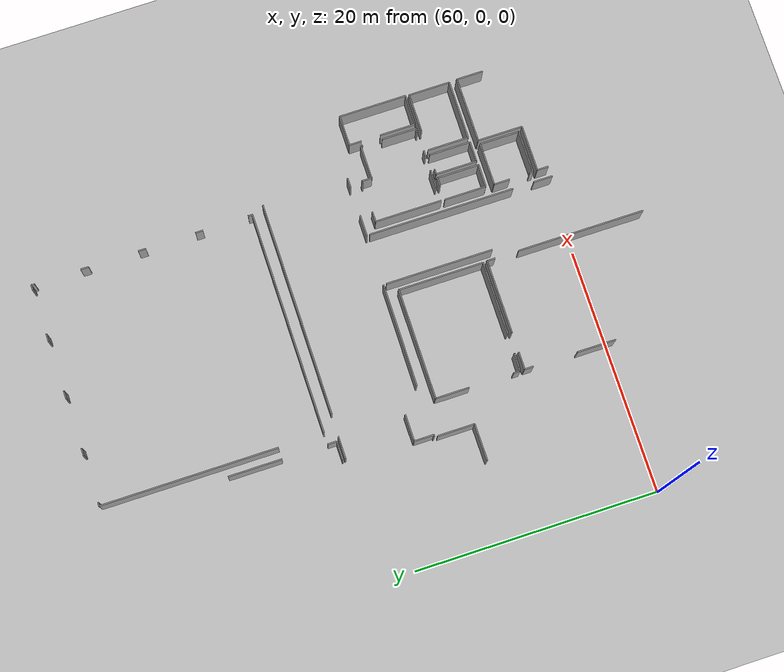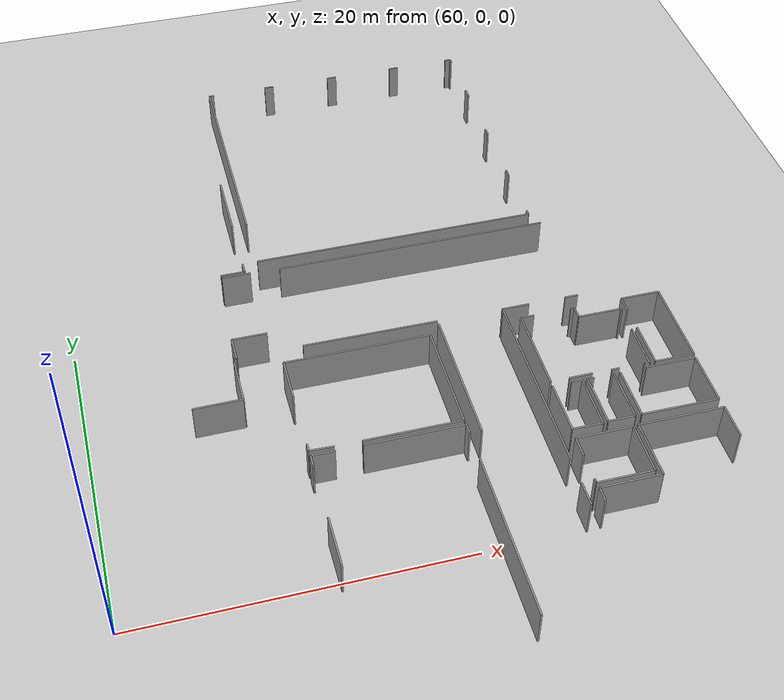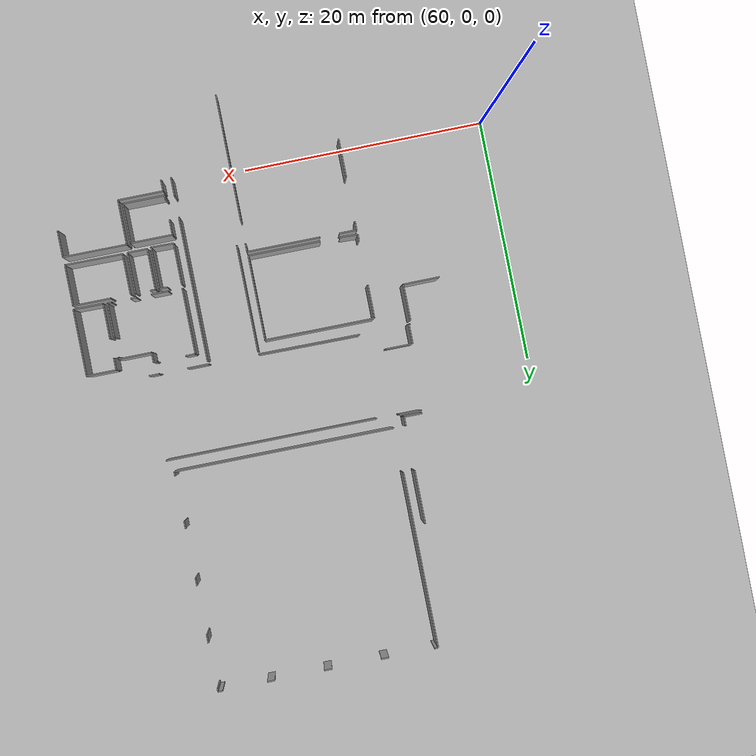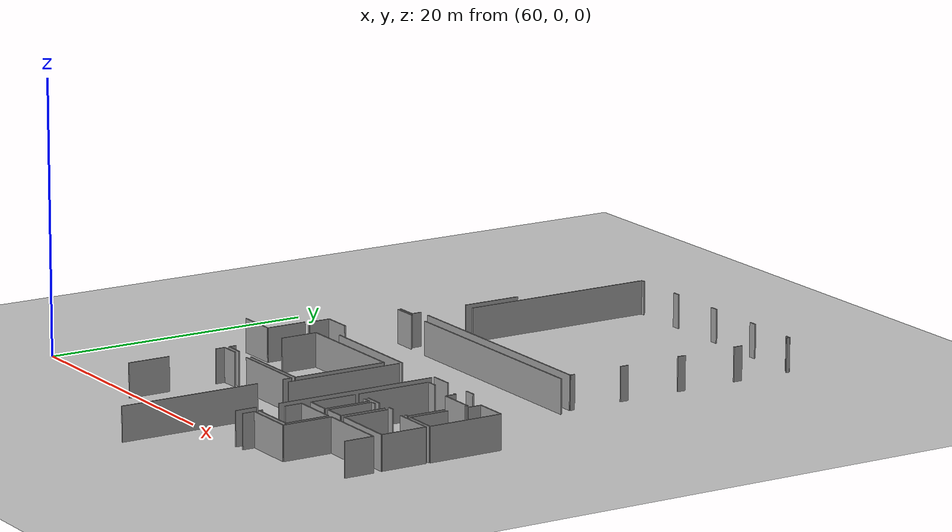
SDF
<sdf version="1.6">
 <world name="default">
  <model name="ground_plane">
   <static>1</static>
   <link name="link">
    <collision name="collision">
     <geometry><plane><normal>0 0 1</normal><size>100 100</size></plane></geometry>
     <surface><friction><ode><mu>100</mu><mu2>50</mu2></ode></friction></surface>
    </collision>
    <visual name="visual">
     <cast_shadows>0</cast_shadows>
     <geometry><plane><normal>0 0 1</normal><size>100 100</size></plane></geometry>
     <material>
      <script><uri>file://media/materials/scripts/gazebo.material</uri><name>Gazebo/Grey</name></script>
     </material>
    </visual>
   </link>
  </model>
  <model name="0510035740_A_40_1_103">
   <static>1</static>
   <link name="Wall_476">
    <collision name="Wall_476_Collision">
     <geometry><box><size>4.37758164502 0.1 2.5</size></box></geometry>
     <pose>2.18879082251 0 1.25 0 0 0</pose>
    </collision>
    <visual name="Wall_476_Visual">
     <pose>2.18879082251 0 1.25 0 0 0</pose>
     <geometry><box><size>4.37758164502 0.1 2.5</size></box></geometry>
     <material>
      <script><uri>file://media/materials/scripts/gazebo.material</uri><name>Gazebo/Grey</name></script>
      <ambient>1 1 1 1</ambient>
     </material>
    </visual>
    <pose>165.230611092 -18.1689434846 0 0 0 -1.57079632679</pose>
   </link>
   <link name="Wall_477">
    <collision name="Wall_477_Collision">
     <geometry><box><size>0.747955305419 0.1 2.5</size></box></geometry>
     <pose>0.37397765271 0 1.25 0 0 0</pose>
    </collision>
    <visual name="Wall_477_Visual">
     <pose>0.37397765271 0 1.25 0 0 0</pose>
     <geometry><box><size>0.747955305419 0.1 2.5</size></box></geometry>
     <material>
      <script><uri>file://media/materials/scripts/gazebo.material</uri><name>Gazebo/Grey</name></script>
      <ambient>1 1 1 1</ambient>
     </material>
    </visual>
    <pose>165.230611092 -26.2489927222 0 0 0 -1.57079632679</pose>
   </link>
   <link name="Wall_478">
    <collision name="Wall_478_Collision">
     <geometry><box><size>1.52788969753 0.1 2.5</size></box></geometry>
     <pose>0.763944848766 0 1.25 0 0 0</pose>
    </collision>
    <visual name="Wall_478_Visual">
     <pose>0.763944848766 0 1.25 0 0 0</pose>
     <geometry><box><size>1.52788969753 0.1 2.5</size></box></geometry>
     <material>
      <script><uri>file://media/materials/scripts/gazebo.material</uri><name>Gazebo/Grey</name></script>
      <ambient>1 1 1 1</ambient>
     </material>
    </visual>
    <pose>165.230611092 -26.9969480276 0 0 0 3.14159265359</pose>
   </link>
   <link name="Wall_480">
    <collision name="Wall_480_Collision">
     <geometry><box><size>14.4844958535 0.1 2.5</size></box></geometry>
     <pose>7.24224792675 0 1.25 0 0 0</pose>
    </collision>
    <visual name="Wall_480_Visual">
     <pose>7.24224792675 0 1.25 0 0 0</pose>
     <geometry><box><size>14.4844958535 0.1 2.5</size></box></geometry>
     <material>
      <script><uri>file://media/materials/scripts/gazebo.material</uri><name>Gazebo/Grey</name></script>
      <ambient>1 1 1 1</ambient>
     </material>
    </visual>
    <pose>166.169679511 -22.5574386274 0 0 0 1.57079632679</pose>
   </link>
   <link name="Wall_481">
    <collision name="Wall_481_Collision">
     <geometry><box><size>0.305577939506 0.1 2.5</size></box></geometry>
     <pose>0.152788969753 0 1.25 0 0 0</pose>
    </collision>
    <visual name="Wall_481_Visual">
     <pose>0.152788969753 0 1.25 0 0 0</pose>
     <geometry><box><size>0.305577939506 0.1 2.5</size></box></geometry>
     <material>
      <script><uri>file://media/materials/scripts/gazebo.material</uri><name>Gazebo/Grey</name></script>
      <ambient>1 1 1 1</ambient>
     </material>
    </visual>
    <pose>166.169679511 -8.07294277393 0 0 0 0.0</pose>
   </link>
   <link name="Wall_482">
    <collision name="Wall_482_Collision">
     <geometry><box><size>0.633998083793 0.1 2.5</size></box></geometry>
     <pose>0.316999041896 0 1.25 0 0 0</pose>
    </collision>
    <visual name="Wall_482_Visual">
     <pose>0.316999041896 0 1.25 0 0 0</pose>
     <geometry><box><size>0.633998083793 0.1 2.5</size></box></geometry>
     <material>
      <script><uri>file://media/materials/scripts/gazebo.material</uri><name>Gazebo/Grey</name></script>
      <ambient>1 1 1 1</ambient>
     </material>
    </visual>
    <pose>170.246759262 -8.07294277393 0 0 0 0.0</pose>
   </link>
   <link name="Wall_483">
    <collision name="Wall_483_Collision">
     <geometry><box><size>0.656078881747 0.1 2.5</size></box></geometry>
     <pose>0.328039440874 0 1.25 0 0 0</pose>
    </collision>
    <visual name="Wall_483_Visual">
     <pose>0.328039440874 0 1.25 0 0 0</pose>
     <geometry><box><size>0.656078881747 0.1 2.5</size></box></geometry>
     <material>
      <script><uri>file://media/materials/scripts/gazebo.material</uri><name>Gazebo/Grey</name></script>
      <ambient>1 1 1 1</ambient>
     </material>
    </visual>
    <pose>174.94260896 -8.07294277393 0 0 0 0.0</pose>
   </link>
   <link name="Wall_484">
    <collision name="Wall_484_Collision">
     <geometry><box><size>0.618516144997 0.1 2.5</size></box></geometry>
     <pose>0.309258072499 0 1.25 0 0 0</pose>
    </collision>
    <visual name="Wall_484_Visual">
     <pose>0.309258072499 0 1.25 0 0 0</pose>
     <geometry><box><size>0.618516144997 0.1 2.5</size></box></geometry>
     <material>
      <script><uri>file://media/materials/scripts/gazebo.material</uri><name>Gazebo/Grey</name></script>
      <ambient>1 1 1 1</ambient>
     </material>
    </visual>
    <pose>179.686934893 -8.07294277393 0 0 0 0.0</pose>
   </link>
   <link name="Wall_485">
    <collision name="Wall_485_Collision">
     <geometry><box><size>0.391109306295 0.1 2.5</size></box></geometry>
     <pose>0.195554653147 0 1.25 0 0 0</pose>
    </collision>
    <visual name="Wall_485_Visual">
     <pose>0.195554653147 0 1.25 0 0 0</pose>
     <geometry><box><size>0.391109306295 0.1 2.5</size></box></geometry>
     <material>
      <script><uri>file://media/materials/scripts/gazebo.material</uri><name>Gazebo/Grey</name></script>
      <ambient>1 1 1 1</ambient>
     </material>
    </visual>
    <pose>184.002588783 -8.07294277393 0 0 0 0.0</pose>
   </link>
   <link name="Wall_486">
    <collision name="Wall_486_Collision">
     <geometry><box><size>0.269030411858 0.1 2.5</size></box></geometry>
     <pose>0.134515205929 0 1.25 0 0 0</pose>
    </collision>
    <visual name="Wall_486_Visual">
     <pose>0.134515205929 0 1.25 0 0 0</pose>
     <geometry><box><size>0.269030411858 0.1 2.5</size></box></geometry>
     <material>
      <script><uri>file://media/materials/scripts/gazebo.material</uri><name>Gazebo/Grey</name></script>
      <ambient>1 1 1 1</ambient>
     </material>
    </visual>
    <pose>184.39369809 -8.07294277393 0 0 0 -1.57079632679</pose>
   </link>
   <link name="Wall_487">
    <collision name="Wall_487_Collision">
     <geometry><box><size>0.668768995514 0.1 2.5</size></box></geometry>
     <pose>0.334384497757 0 1.25 0 0 0</pose>
    </collision>
    <visual name="Wall_487_Visual">
     <pose>0.334384497757 0 1.25 0 0 0</pose>
     <geometry><box><size>0.668768995514 0.1 2.5</size></box></geometry>
     <material>
      <script><uri>file://media/materials/scripts/gazebo.material</uri><name>Gazebo/Grey</name></script>
      <ambient>1 1 1 1</ambient>
     </material>
    </visual>
    <pose>184.39369809 -12.1023076972 0 0 0 -1.57079632679</pose>
   </link>
   <link name="Wall_488">
    <collision name="Wall_488_Collision">
     <geometry><box><size>0.623845992779 0.1 2.5</size></box></geometry>
     <pose>0.31192299639 0 1.25 0 0 0</pose>
    </collision>
    <visual name="Wall_488_Visual">
     <pose>0.31192299639 0 1.25 0 0 0</pose>
     <geometry><box><size>0.623845992779 0.1 2.5</size></box></geometry>
     <material>
      <script><uri>file://media/materials/scripts/gazebo.material</uri><name>Gazebo/Grey</name></script>
      <ambient>1 1 1 1</ambient>
     </material>
    </visual>
    <pose>184.39369809 -16.8362277368 0 0 0 -1.57079632679</pose>
   </link>
   <link name="Wall_489">
    <collision name="Wall_489_Collision">
     <geometry><box><size>0.618008540447 0.1 2.5</size></box></geometry>
     <pose>0.309004270223 0 1.25 0 0 0</pose>
    </collision>
    <visual name="Wall_489_Visual">
     <pose>0.309004270223 0 1.25 0 0 0</pose>
     <geometry><box><size>0.618008540447 0.1 2.5</size></box></geometry>
     <material>
      <script><uri>file://media/materials/scripts/gazebo.material</uri><name>Gazebo/Grey</name></script>
      <ambient>1 1 1 1</ambient>
     </material>
    </visual>
    <pose>184.39369809 -21.5531430239 0 0 0 -1.57079632679</pose>
   </link>
   <link name="Wall_490">
    <collision name="Wall_490_Collision">
     <geometry><box><size>0.350500942241 0.1 2.5</size></box></geometry>
     <pose>0.17525047112 0 1.25 0 0 0</pose>
    </collision>
    <visual name="Wall_490_Visual">
     <pose>0.17525047112 0 1.25 0 0 0</pose>
     <geometry><box><size>0.350500942241 0.1 2.5</size></box></geometry>
     <material>
      <script><uri>file://media/materials/scripts/gazebo.material</uri><name>Gazebo/Grey</name></script>
      <ambient>1 1 1 1</ambient>
     </material>
    </visual>
    <pose>184.39369809 -25.9121971028 0 0 0 -1.57079632679</pose>
   </link>
   <link name="Wall_491">
    <collision name="Wall_491_Collision">
     <geometry><box><size>18.2021915826 0.1 2.5</size></box></geometry>
     <pose>9.10109579132 0 1.25 0 0 0</pose>
    </collision>
    <visual name="Wall_491_Visual">
     <pose>9.10109579132 0 1.25 0 0 0</pose>
     <geometry><box><size>18.2021915826 0.1 2.5</size></box></geometry>
     <material>
      <script><uri>file://media/materials/scripts/gazebo.material</uri><name>Gazebo/Grey</name></script>
      <ambient>1 1 1 1</ambient>
     </material>
    </visual>
    <pose>184.39369809 -26.2626980451 0 0 0 3.14159265359</pose>
   </link>
   <link name="Wall_497">
    <collision name="Wall_497_Collision">
     <geometry><box><size>1.81417866411 0.1 2.5</size></box></geometry>
     <pose>0.907089332056 0 1.25 0 0 0</pose>
    </collision>
    <visual name="Wall_497_Visual">
     <pose>0.907089332056 0 1.25 0 0 0</pose>
     <geometry><box><size>1.81417866411 0.1 2.5</size></box></geometry>
     <material>
      <script><uri>file://media/materials/scripts/gazebo.material</uri><name>Gazebo/Grey</name></script>
      <ambient>1 1 1 1</ambient>
     </material>
    </visual>
    <pose>163.733177668 -27.2192788208 0 0 0 0.0</pose>
   </link>
   <link name="Wall_498">
    <collision name="Wall_498_Collision">
     <geometry><box><size>2.16950184958 0.1 2.5</size></box></geometry>
     <pose>1.08475092479 0 1.25 0 0 0</pose>
    </collision>
    <visual name="Wall_498_Visual">
     <pose>1.08475092479 0 1.25 0 0 0</pose>
     <geometry><box><size>2.16950184958 0.1 2.5</size></box></geometry>
     <material>
      <script><uri>file://media/materials/scripts/gazebo.material</uri><name>Gazebo/Grey</name></script>
      <ambient>1 1 1 1</ambient>
     </material>
    </visual>
    <pose>165.547356332 -32.6841494134 0 0 0 3.14159265359</pose>
   </link>
   <link name="Wall_499">
    <collision name="Wall_499_Collision">
     <geometry><box><size>1.60149235738 0.1 2.5</size></box></geometry>
     <pose>0.800746178689 0 1.25 0 0 0</pose>
    </collision>
    <visual name="Wall_499_Visual">
     <pose>0.800746178689 0 1.25 0 0 0</pose>
     <geometry><box><size>1.60149235738 0.1 2.5</size></box></geometry>
     <material>
      <script><uri>file://media/materials/scripts/gazebo.material</uri><name>Gazebo/Grey</name></script>
      <ambient>1 1 1 1</ambient>
     </material>
    </visual>
    <pose>163.377854482 -32.6841494134 0 0 0 -1.57079632679</pose>
   </link>
   <link name="Wall_500">
    <collision name="Wall_500_Collision">
     <geometry><box><size>0.145174901493 0.1 2.5</size></box></geometry>
     <pose>0.0725874507465 0 1.25 0 0 0</pose>
    </collision>
    <visual name="Wall_500_Visual">
     <pose>0.0725874507465 0 1.25 0 0 0</pose>
     <geometry><box><size>0.145174901493 0.1 2.5</size></box></geometry>
     <material>
      <script><uri>file://media/materials/scripts/gazebo.material</uri><name>Gazebo/Grey</name></script>
      <ambient>1 1 1 1</ambient>
     </material>
    </visual>
    <pose>163.377854482 -34.2856417708 0 0 0 3.14159265359</pose>
   </link>
   <link name="Wall_504">
    <collision name="Wall_504_Collision">
     <geometry><box><size>3.01187160143 0.1 2.5</size></box></geometry>
     <pose>1.50593580071 0 1.25 0 0 0</pose>
    </collision>
    <visual name="Wall_504_Visual">
     <pose>1.50593580071 0 1.25 0 0 0</pose>
     <geometry><box><size>3.01187160143 0.1 2.5</size></box></geometry>
     <material>
      <script><uri>file://media/materials/scripts/gazebo.material</uri><name>Gazebo/Grey</name></script>
      <ambient>1 1 1 1</ambient>
     </material>
    </visual>
    <pose>163.188517985 -34.5462967075 0 0 0 -1.57079632679</pose>
   </link>
   <link name="Wall_505">
    <collision name="Wall_505_Collision">
     <geometry><box><size>3.00810980467 0.1 2.5</size></box></geometry>
     <pose>1.50405490233 0 1.25 0 0 0</pose>
    </collision>
    <visual name="Wall_505_Visual">
     <pose>1.50405490233 0 1.25 0 0 0</pose>
     <geometry><box><size>3.00810980467 0.1 2.5</size></box></geometry>
     <material>
      <script><uri>file://media/materials/scripts/gazebo.material</uri><name>Gazebo/Grey</name></script>
      <ambient>1 1 1 1</ambient>
     </material>
    </visual>
    <pose>163.188517985 -37.558168309 0 0 0 -3.13610840213</pose>
   </link>
   <link name="Wall_506">
    <collision name="Wall_506_Collision">
     <geometry><box><size>17.4529672659 0.1 2.5</size></box></geometry>
     <pose>8.72648363293 0 1.25 0 0 0</pose>
    </collision>
    <visual name="Wall_506_Visual">
     <pose>8.72648363293 0 1.25 0 0 0</pose>
     <geometry><box><size>17.4529672659 0.1 2.5</size></box></geometry>
     <material>
      <script><uri>file://media/materials/scripts/gazebo.material</uri><name>Gazebo/Grey</name></script>
      <ambient>1 1 1 1</ambient>
     </material>
    </visual>
    <pose>167.426508379 -27.2806989715 0 0 0 0.0</pose>
   </link>
   <link name="Wall_507">
    <collision name="Wall_507_Collision">
     <geometry><box><size>0.825111197122 0.1 2.5</size></box></geometry>
     <pose>0.412555598561 0 1.25 0 0 0</pose>
    </collision>
    <visual name="Wall_507_Visual">
     <pose>0.412555598561 0 1.25 0 0 0</pose>
     <geometry><box><size>0.825111197122 0.1 2.5</size></box></geometry>
     <material>
      <script><uri>file://media/materials/scripts/gazebo.material</uri><name>Gazebo/Grey</name></script>
      <ambient>1 1 1 1</ambient>
     </material>
    </visual>
    <pose>184.879475644 -34.3094991847 0 0 0 3.14159265359</pose>
   </link>
   <link name="Wall_508">
    <collision name="Wall_508_Collision">
     <geometry><box><size>1.74133741109 0.1 2.5</size></box></geometry>
     <pose>0.870668705545 0 1.25 0 0 0</pose>
    </collision>
    <visual name="Wall_508_Visual">
     <pose>0.870668705545 0 1.25 0 0 0</pose>
     <geometry><box><size>1.74133741109 0.1 2.5</size></box></geometry>
     <material>
      <script><uri>file://media/materials/scripts/gazebo.material</uri><name>Gazebo/Grey</name></script>
      <ambient>1 1 1 1</ambient>
     </material>
    </visual>
    <pose>181.690196253 -34.3094991847 0 0 0 3.14159265359</pose>
   </link>
   <link name="Wall_509">
    <collision name="Wall_509_Collision">
     <geometry><box><size>8.38351238186 0.1 2.5</size></box></geometry>
     <pose>4.19175619093 0 1.25 0 0 0</pose>
    </collision>
    <visual name="Wall_509_Visual">
     <pose>4.19175619093 0 1.25 0 0 0</pose>
     <geometry><box><size>8.38351238186 0.1 2.5</size></box></geometry>
     <material>
      <script><uri>file://media/materials/scripts/gazebo.material</uri><name>Gazebo/Grey</name></script>
      <ambient>1 1 1 1</ambient>
     </material>
    </visual>
    <pose>175.809851335 -34.3094991847 0 0 0 3.13523507523</pose>
   </link>
   <link name="Wall_517">
    <collision name="Wall_517_Collision">
     <geometry><box><size>8.76430017195 0.1 2.5</size></box></geometry>
     <pose>4.38215008598 0 1.25 0 0 0</pose>
    </collision>
    <visual name="Wall_517_Visual">
     <pose>4.38215008598 0 1.25 0 0 0</pose>
     <geometry><box><size>8.76430017195 0.1 2.5</size></box></geometry>
     <material>
      <script><uri>file://media/materials/scripts/gazebo.material</uri><name>Gazebo/Grey</name></script>
      <ambient>1 1 1 1</ambient>
     </material>
    </visual>
    <pose>175.821272438 -43.3204951682 0 0 0 1.57079632679</pose>
   </link>
   <link name="Wall_518">
    <collision name="Wall_518_Collision">
     <geometry><box><size>11.920585268 0.1 2.5</size></box></geometry>
     <pose>5.96029263402 0 1.25 0 0 0</pose>
    </collision>
    <visual name="Wall_518_Visual">
     <pose>5.96029263402 0 1.25 0 0 0</pose>
     <geometry><box><size>11.920585268 0.1 2.5</size></box></geometry>
     <material>
      <script><uri>file://media/materials/scripts/gazebo.material</uri><name>Gazebo/Grey</name></script>
      <ambient>1 1 1 1</ambient>
     </material>
    </visual>
    <pose>179.985660171 -34.5561949963 0 0 0 -1.57079632679</pose>
   </link>
   <link name="Wall_519">
    <collision name="Wall_519_Collision">
     <geometry><box><size>1.55200091369 0.1 2.5</size></box></geometry>
     <pose>0.776000456844 0 1.25 0 0 0</pose>
    </collision>
    <visual name="Wall_519_Visual">
     <pose>0.776000456844 0 1.25 0 0 0</pose>
     <geometry><box><size>1.55200091369 0.1 2.5</size></box></geometry>
     <material>
      <script><uri>file://media/materials/scripts/gazebo.material</uri><name>Gazebo/Grey</name></script>
      <ambient>1 1 1 1</ambient>
     </material>
    </visual>
    <pose>179.985660171 -48.2239551278 0 0 0 -1.57079632679</pose>
   </link>
   <link name="Wall_526">
    <collision name="Wall_526_Collision">
     <geometry><box><size>0.516741432587 0.1 2.5</size></box></geometry>
     <pose>0.258370716293 0 1.25 0 0 0</pose>
    </collision>
    <visual name="Wall_526_Visual">
     <pose>0.258370716293 0 1.25 0 0 0</pose>
     <geometry><box><size>0.516741432587 0.1 2.5</size></box></geometry>
     <material>
      <script><uri>file://media/materials/scripts/gazebo.material</uri><name>Gazebo/Grey</name></script>
      <ambient>1 1 1 1</ambient>
     </material>
    </visual>
    <pose>166.018159553 -42.2598554596 0 0 0 1.57079632679</pose>
   </link>
   <link name="Wall_527">
    <collision name="Wall_527_Collision">
     <geometry><box><size>2.76339917387 0.1 2.5</size></box></geometry>
     <pose>1.38169958694 0 1.25 0 0 0</pose>
    </collision>
    <visual name="Wall_527_Visual">
     <pose>1.38169958694 0 1.25 0 0 0</pose>
     <geometry><box><size>2.76339917387 0.1 2.5</size></box></geometry>
     <material>
      <script><uri>file://media/materials/scripts/gazebo.material</uri><name>Gazebo/Grey</name></script>
      <ambient>1 1 1 1</ambient>
     </material>
    </visual>
    <pose>166.018159553 -38.0837928212 0 0 0 1.57079632679</pose>
   </link>
   <link name="Wall_528">
    <collision name="Wall_528_Collision">
     <geometry><box><size>9.05058913853 0.1 2.5</size></box></geometry>
     <pose>4.52529456927 0 1.25 0 0 0</pose>
    </collision>
    <visual name="Wall_528_Visual">
     <pose>4.52529456927 0 1.25 0 0 0</pose>
     <geometry><box><size>9.05058913853 0.1 2.5</size></box></geometry>
     <material>
      <script><uri>file://media/materials/scripts/gazebo.material</uri><name>Gazebo/Grey</name></script>
      <ambient>1 1 1 1</ambient>
     </material>
    </visual>
    <pose>166.018159553 -35.3203936473 0 0 0 0.0</pose>
   </link>
   <link name="Wall_529">
    <collision name="Wall_529_Collision">
     <geometry><box><size>6.99605971968 0.1 2.5</size></box></geometry>
     <pose>3.49802985984 0 1.25 0 0 0</pose>
    </collision>
    <visual name="Wall_529_Visual">
     <pose>3.49802985984 0 1.25 0 0 0</pose>
     <geometry><box><size>6.99605971968 0.1 2.5</size></box></geometry>
     <material>
      <script><uri>file://media/materials/scripts/gazebo.material</uri><name>Gazebo/Grey</name></script>
      <ambient>1 1 1 1</ambient>
     </material>
    </visual>
    <pose>175.068748691 -35.3203936473 0 0 0 -1.57079632679</pose>
   </link>
   <link name="Wall_530">
    <collision name="Wall_530_Collision">
     <geometry><box><size>5.96739909773 0.1 2.5</size></box></geometry>
     <pose>2.98369954887 0 1.25 0 0 0</pose>
    </collision>
    <visual name="Wall_530_Visual">
     <pose>2.98369954887 0 1.25 0 0 0</pose>
     <geometry><box><size>5.96739909773 0.1 2.5</size></box></geometry>
     <material>
      <script><uri>file://media/materials/scripts/gazebo.material</uri><name>Gazebo/Grey</name></script>
      <ambient>1 1 1 1</ambient>
     </material>
    </visual>
    <pose>175.068748691 -42.316453367 0 0 0 3.14159265359</pose>
   </link>
   <link name="Wall_531">
    <collision name="Wall_531_Collision">
     <geometry><box><size>1.45538795896 0.1 2.5</size></box></geometry>
     <pose>0.727693979482 0 1.25 0 0 0</pose>
    </collision>
    <visual name="Wall_531_Visual">
     <pose>0.727693979482 0 1.25 0 0 0</pose>
     <geometry><box><size>1.45538795896 0.1 2.5</size></box></geometry>
     <material>
      <script><uri>file://media/materials/scripts/gazebo.material</uri><name>Gazebo/Grey</name></script>
      <ambient>1 1 1 1</ambient>
     </material>
    </visual>
    <pose>167.47244659 -42.316453367 0 0 0 3.10269430869</pose>
   </link>
   <link name="Wall_533">
    <collision name="Wall_533_Collision">
     <geometry><box><size>3.14207216868 0.1 2.5</size></box></geometry>
     <pose>1.57103608434 0 1.25 0 0 0</pose>
    </collision>
    <visual name="Wall_533_Visual">
     <pose>1.57103608434 0 1.25 0 0 0</pose>
     <geometry><box><size>3.14207216868 0.1 2.5</size></box></geometry>
     <material>
      <script><uri>file://media/materials/scripts/gazebo.material</uri><name>Gazebo/Grey</name></script>
      <ambient>1 1 1 1</ambient>
     </material>
    </visual>
    <pose>166.032880085 -50.1597050818 0 0 0 1.57079632679</pose>
   </link>
   <link name="Wall_534">
    <collision name="Wall_534_Collision">
     <geometry><box><size>0.719275648306 0.1 2.5</size></box></geometry>
     <pose>0.359637824153 0 1.25 0 0 0</pose>
    </collision>
    <visual name="Wall_534_Visual">
     <pose>0.359637824153 0 1.25 0 0 0</pose>
     <geometry><box><size>0.719275648306 0.1 2.5</size></box></geometry>
     <material>
      <script><uri>file://media/materials/scripts/gazebo.material</uri><name>Gazebo/Grey</name></script>
      <ambient>1 1 1 1</ambient>
     </material>
    </visual>
    <pose>166.032880085 -43.3583117073 0 0 0 1.57079632679</pose>
   </link>
   <link name="Wall_535">
    <collision name="Wall_535_Collision">
     <geometry><box><size>1.42687639195 0.1 2.5</size></box></geometry>
     <pose>0.713438195973 0 1.25 0 0 0</pose>
    </collision>
    <visual name="Wall_535_Visual">
     <pose>0.713438195973 0 1.25 0 0 0</pose>
     <geometry><box><size>1.42687639195 0.1 2.5</size></box></geometry>
     <material>
      <script><uri>file://media/materials/scripts/gazebo.material</uri><name>Gazebo/Grey</name></script>
      <ambient>1 1 1 1</ambient>
     </material>
    </visual>
    <pose>166.032880085 -42.639036059 0 0 0 0.0</pose>
   </link>
   <link name="Wall_536">
    <collision name="Wall_536_Collision">
     <geometry><box><size>6.0366871189 0.1 2.5</size></box></geometry>
     <pose>3.01834355945 0 1.25 0 0 0</pose>
    </collision>
    <visual name="Wall_536_Visual">
     <pose>3.01834355945 0 1.25 0 0 0</pose>
     <geometry><box><size>6.0366871189 0.1 2.5</size></box></geometry>
     <material>
      <script><uri>file://media/materials/scripts/gazebo.material</uri><name>Gazebo/Grey</name></script>
      <ambient>1 1 1 1</ambient>
     </material>
    </visual>
    <pose>169.065563473 -42.639036059 0 0 0 0.0</pose>
   </link>
   <link name="Wall_537">
    <collision name="Wall_537_Collision">
     <geometry><box><size>0.680190097904 0.1 2.5</size></box></geometry>
     <pose>0.340095048952 0 1.25 0 0 0</pose>
    </collision>
    <visual name="Wall_537_Visual">
     <pose>0.340095048952 0 1.25 0 0 0</pose>
     <geometry><box><size>0.680190097904 0.1 2.5</size></box></geometry>
     <material>
      <script><uri>file://media/materials/scripts/gazebo.material</uri><name>Gazebo/Grey</name></script>
      <ambient>1 1 1 1</ambient>
     </material>
    </visual>
    <pose>175.102250592 -42.639036059 0 0 0 -1.57079632679</pose>
   </link>
   <link name="Wall_538">
    <collision name="Wall_538_Collision">
     <geometry><box><size>10.3726451908 0.1 2.5</size></box></geometry>
     <pose>5.18632259538 0 1.25 0 0 0</pose>
    </collision>
    <visual name="Wall_538_Visual">
     <pose>5.18632259538 0 1.25 0 0 0</pose>
     <geometry><box><size>10.3726451908 0.1 2.5</size></box></geometry>
     <material>
      <script><uri>file://media/materials/scripts/gazebo.material</uri><name>Gazebo/Grey</name></script>
      <ambient>1 1 1 1</ambient>
     </material>
    </visual>
    <pose>175.102250592 -45.2783259202 0 0 0 -1.57079632679</pose>
   </link>
   <link name="Wall_637">
    <collision name="Wall_637_Collision">
     <geometry><box><size>0.921809864025 0.1 2.5</size></box></geometry>
     <pose>0.460904932013 0 1.25 0 0 0</pose>
    </collision>
    <visual name="Wall_637_Visual">
     <pose>0.460904932013 0 1.25 0 0 0</pose>
     <geometry><box><size>0.921809864025 0.1 2.5</size></box></geometry>
     <material>
      <script><uri>file://media/materials/scripts/gazebo.material</uri><name>Gazebo/Grey</name></script>
      <ambient>1 1 1 1</ambient>
     </material>
    </visual>
    <pose>180.819654448 -49.7213885522 0 0 0 1.57079632679</pose>
   </link>
   <link name="Wall_638">
    <collision name="Wall_638_Collision">
     <geometry><box><size>3.74206074757 0.1 2.5</size></box></geometry>
     <pose>1.87103037379 0 1.25 0 0 0</pose>
    </collision>
    <visual name="Wall_638_Visual">
     <pose>1.87103037379 0 1.25 0 0 0</pose>
     <geometry><box><size>3.74206074757 0.1 2.5</size></box></geometry>
     <material>
      <script><uri>file://media/materials/scripts/gazebo.material</uri><name>Gazebo/Grey</name></script>
      <ambient>1 1 1 1</ambient>
     </material>
    </visual>
    <pose>180.819654448 -48.7995786882 0 0 0 0.0</pose>
   </link>
   <link name="Wall_639">
    <collision name="Wall_639_Collision">
     <geometry><box><size>3.66642766952 0.1 2.5</size></box></geometry>
     <pose>1.83321383476 0 1.25 0 0 0</pose>
    </collision>
    <visual name="Wall_639_Visual">
     <pose>1.83321383476 0 1.25 0 0 0</pose>
     <geometry><box><size>3.66642766952 0.1 2.5</size></box></geometry>
     <material>
      <script><uri>file://media/materials/scripts/gazebo.material</uri><name>Gazebo/Grey</name></script>
      <ambient>1 1 1 1</ambient>
     </material>
    </visual>
    <pose>184.561715196 -48.7995786882 0 0 0 1.57079632679</pose>
   </link>
   <link name="Wall_640">
    <collision name="Wall_640_Collision">
     <geometry><box><size>5.29837629994 0.1 2.5</size></box></geometry>
     <pose>2.64918814997 0 1.25 0 0 0</pose>
    </collision>
    <visual name="Wall_640_Visual">
     <pose>2.64918814997 0 1.25 0 0 0</pose>
     <geometry><box><size>5.29837629994 0.1 2.5</size></box></geometry>
     <material>
      <script><uri>file://media/materials/scripts/gazebo.material</uri><name>Gazebo/Grey</name></script>
      <ambient>1 1 1 1</ambient>
     </material>
    </visual>
    <pose>184.561715196 -45.1331510187 0 0 0 0.0</pose>
   </link>
   <link name="Wall_641">
    <collision name="Wall_641_Collision">
     <geometry><box><size>2.17660831329 0.1 2.5</size></box></geometry>
     <pose>1.08830415665 0 1.25 0 0 0</pose>
    </collision>
    <visual name="Wall_641_Visual">
     <pose>1.08830415665 0 1.25 0 0 0</pose>
     <geometry><box><size>2.17660831329 0.1 2.5</size></box></geometry>
     <material>
      <script><uri>file://media/materials/scripts/gazebo.material</uri><name>Gazebo/Grey</name></script>
      <ambient>1 1 1 1</ambient>
     </material>
    </visual>
    <pose>189.860091496 -45.1331510187 0 0 0 -1.57079632679</pose>
   </link>
   <link name="Wall_644">
    <collision name="Wall_644_Collision">
     <geometry><box><size>0.285273757479 0.1 2.5</size></box></geometry>
     <pose>0.14263687874 0 1.25 0 0 0</pose>
    </collision>
    <visual name="Wall_644_Visual">
     <pose>0.14263687874 0 1.25 0 0 0</pose>
     <geometry><box><size>0.285273757479 0.1 2.5</size></box></geometry>
     <material>
      <script><uri>file://media/materials/scripts/gazebo.material</uri><name>Gazebo/Grey</name></script>
      <ambient>1 1 1 1</ambient>
     </material>
    </visual>
    <pose>180.776000457 -48.4374028413 0 0 0 1.57079632679</pose>
   </link>
   <link name="Wall_645">
    <collision name="Wall_645_Collision">
     <geometry><box><size>1.28373190866 0.1 2.5</size></box></geometry>
     <pose>0.641865954328 0 1.25 0 0 0</pose>
    </collision>
    <visual name="Wall_645_Visual">
     <pose>0.641865954328 0 1.25 0 0 0</pose>
     <geometry><box><size>1.28373190866 0.1 2.5</size></box></geometry>
     <material>
      <script><uri>file://media/materials/scripts/gazebo.material</uri><name>Gazebo/Grey</name></script>
      <ambient>1 1 1 1</ambient>
     </material>
    </visual>
    <pose>180.776000457 -46.4623135346 0 0 0 1.57079632679</pose>
   </link>
   <link name="Wall_646">
    <collision name="Wall_646_Collision">
     <geometry><box><size>3.46744668566 0.1 2.5</size></box></geometry>
     <pose>1.73372334283 0 1.25 0 0 0</pose>
    </collision>
    <visual name="Wall_646_Visual">
     <pose>1.73372334283 0 1.25 0 0 0</pose>
     <geometry><box><size>3.46744668566 0.1 2.5</size></box></geometry>
     <material>
      <script><uri>file://media/materials/scripts/gazebo.material</uri><name>Gazebo/Grey</name></script>
      <ambient>1 1 1 1</ambient>
     </material>
    </visual>
    <pose>180.776000457 -45.178581626 0 0 0 0.0</pose>
   </link>
   <link name="Wall_647">
    <collision name="Wall_647_Collision">
     <geometry><box><size>3.25882121533 0.1 2.5</size></box></geometry>
     <pose>1.62941060767 0 1.25 0 0 0</pose>
    </collision>
    <visual name="Wall_647_Visual">
     <pose>1.62941060767 0 1.25 0 0 0</pose>
     <geometry><box><size>3.25882121533 0.1 2.5</size></box></geometry>
     <material>
      <script><uri>file://media/materials/scripts/gazebo.material</uri><name>Gazebo/Grey</name></script>
      <ambient>1 1 1 1</ambient>
     </material>
    </visual>
    <pose>184.243447143 -45.178581626 0 0 0 -1.57079632679</pose>
   </link>
   <link name="Wall_648">
    <collision name="Wall_648_Collision">
     <geometry><box><size>3.46744668566 0.1 2.5</size></box></geometry>
     <pose>1.73372334283 0 1.25 0 0 0</pose>
    </collision>
    <visual name="Wall_648_Visual">
     <pose>1.73372334283 0 1.25 0 0 0</pose>
     <geometry><box><size>3.46744668566 0.1 2.5</size></box></geometry>
     <material>
      <script><uri>file://media/materials/scripts/gazebo.material</uri><name>Gazebo/Grey</name></script>
      <ambient>1 1 1 1</ambient>
     </material>
    </visual>
    <pose>184.243447143 -48.4374028413 0 0 0 3.14159265359</pose>
   </link>
   <link name="Wall_649">
    <collision name="Wall_649_Collision">
     <geometry><box><size>5.46385538346 0.1 2.5</size></box></geometry>
     <pose>2.73192769173 0 1.25 0 0 0</pose>
    </collision>
    <visual name="Wall_649_Visual">
     <pose>2.73192769173 0 1.25 0 0 0</pose>
     <geometry><box><size>5.46385538346 0.1 2.5</size></box></geometry>
     <material>
      <script><uri>file://media/materials/scripts/gazebo.material</uri><name>Gazebo/Grey</name></script>
      <ambient>1 1 1 1</ambient>
     </material>
    </visual>
    <pose>180.835390189 -40.7842490308 0 0 0 1.57079632679</pose>
   </link>
   <link name="Wall_650">
    <collision name="Wall_650_Collision">
     <geometry><box><size>0.832725265382 0.1 2.5</size></box></geometry>
     <pose>0.416362632691 0 1.25 0 0 0</pose>
    </collision>
    <visual name="Wall_650_Visual">
     <pose>0.416362632691 0 1.25 0 0 0</pose>
     <geometry><box><size>0.832725265382 0.1 2.5</size></box></geometry>
     <material>
      <script><uri>file://media/materials/scripts/gazebo.material</uri><name>Gazebo/Grey</name></script>
      <ambient>1 1 1 1</ambient>
     </material>
    </visual>
    <pose>180.835390189 -35.3203936473 0 0 0 0.0</pose>
   </link>
   <link name="Wall_651">
    <collision name="Wall_651_Collision">
     <geometry><box><size>0.227153036427 0.1 2.5</size></box></geometry>
     <pose>0.113576518213 0 1.25 0 0 0</pose>
    </collision>
    <visual name="Wall_651_Visual">
     <pose>0.113576518213 0 1.25 0 0 0</pose>
     <geometry><box><size>0.227153036427 0.1 2.5</size></box></geometry>
     <material>
      <script><uri>file://media/materials/scripts/gazebo.material</uri><name>Gazebo/Grey</name></script>
      <ambient>1 1 1 1</ambient>
     </material>
    </visual>
    <pose>184.065531747 -35.3203936473 0 0 0 0.0</pose>
   </link>
   <link name="Wall_652">
    <collision name="Wall_652_Collision">
     <geometry><box><size>0.807598840124 0.1 2.5</size></box></geometry>
     <pose>0.403799420062 0 1.25 0 0 0</pose>
    </collision>
    <visual name="Wall_652_Visual">
     <pose>0.403799420062 0 1.25 0 0 0</pose>
     <geometry><box><size>0.807598840124 0.1 2.5</size></box></geometry>
     <material>
      <script><uri>file://media/materials/scripts/gazebo.material</uri><name>Gazebo/Grey</name></script>
      <ambient>1 1 1 1</ambient>
     </material>
    </visual>
    <pose>184.292684784 -35.3203936473 0 0 0 -1.57079632679</pose>
   </link>
   <link name="Wall_653">
    <collision name="Wall_653_Collision">
     <geometry><box><size>2.73954175999 0.1 2.5</size></box></geometry>
     <pose>1.36977088 0 1.25 0 0 0</pose>
    </collision>
    <visual name="Wall_653_Visual">
     <pose>1.36977088 0 1.25 0 0 0</pose>
     <geometry><box><size>2.73954175999 0.1 2.5</size></box></geometry>
     <material>
      <script><uri>file://media/materials/scripts/gazebo.material</uri><name>Gazebo/Grey</name></script>
      <ambient>1 1 1 1</ambient>
     </material>
    </visual>
    <pose>184.292684784 -36.1279924875 0 0 0 0.0</pose>
   </link>
   <link name="Wall_654">
    <collision name="Wall_654_Collision">
     <geometry><box><size>0.168524710824 0.1 2.5</size></box></geometry>
     <pose>0.084262355412 0 1.25 0 0 0</pose>
    </collision>
    <visual name="Wall_654_Visual">
     <pose>0.084262355412 0 1.25 0 0 0</pose>
     <geometry><box><size>0.168524710824 0.1 2.5</size></box></geometry>
     <material>
      <script><uri>file://media/materials/scripts/gazebo.material</uri><name>Gazebo/Grey</name></script>
      <ambient>1 1 1 1</ambient>
     </material>
    </visual>
    <pose>187.032226544 -36.1279924875 0 0 0 -1.57079632679</pose>
   </link>
   <link name="Wall_655">
    <collision name="Wall_655_Collision">
     <geometry><box><size>2.8433468906 0.1 2.5</size></box></geometry>
     <pose>1.4216734453 0 1.25 0 0 0</pose>
    </collision>
    <visual name="Wall_655_Visual">
     <pose>1.4216734453 0 1.25 0 0 0</pose>
     <geometry><box><size>2.8433468906 0.1 2.5</size></box></geometry>
     <material>
      <script><uri>file://media/materials/scripts/gazebo.material</uri><name>Gazebo/Grey</name></script>
      <ambient>1 1 1 1</ambient>
     </material>
    </visual>
    <pose>187.032226544 -37.91856754 0 0 0 -1.57079632679</pose>
   </link>
   <link name="Wall_656">
    <collision name="Wall_656_Collision">
     <geometry><box><size>0.324359307881 0.1 2.5</size></box></geometry>
     <pose>0.162179653941 0 1.25 0 0 0</pose>
    </collision>
    <visual name="Wall_656_Visual">
     <pose>0.162179653941 0 1.25 0 0 0</pose>
     <geometry><box><size>0.324359307881 0.1 2.5</size></box></geometry>
     <material>
      <script><uri>file://media/materials/scripts/gazebo.material</uri><name>Gazebo/Grey</name></script>
      <ambient>1 1 1 1</ambient>
     </material>
    </visual>
    <pose>187.032226544 -40.7619144306 0 0 0 3.14159265359</pose>
   </link>
   <link name="Wall_657">
    <collision name="Wall_657_Collision">
     <geometry><box><size>0.476133068533 0.1 2.5</size></box></geometry>
     <pose>0.238066534266 0 1.25 0 0 0</pose>
    </collision>
    <visual name="Wall_657_Visual">
     <pose>0.238066534266 0 1.25 0 0 0</pose>
     <geometry><box><size>0.476133068533 0.1 2.5</size></box></geometry>
     <material>
      <script><uri>file://media/materials/scripts/gazebo.material</uri><name>Gazebo/Grey</name></script>
      <ambient>1 1 1 1</ambient>
     </material>
    </visual>
    <pose>185.123379631 -40.7619144306 0 0 0 3.14159265359</pose>
   </link>
   <link name="Wall_658">
    <collision name="Wall_658_Collision">
     <geometry><box><size>1.42383076464 0.1 2.5</size></box></geometry>
     <pose>0.711915382321 0 1.25 0 0 0</pose>
    </collision>
    <visual name="Wall_658_Visual">
     <pose>0.711915382321 0 1.25 0 0 0</pose>
     <geometry><box><size>1.42383076464 0.1 2.5</size></box></geometry>
     <material>
      <script><uri>file://media/materials/scripts/gazebo.material</uri><name>Gazebo/Grey</name></script>
      <ambient>1 1 1 1</ambient>
     </material>
    </visual>
    <pose>183.420620166 -40.7619144306 0 0 0 3.14159265359</pose>
   </link>
   <link name="Wall_659">
    <collision name="Wall_659_Collision">
     <geometry><box><size>2.8968991707 0.1 2.5</size></box></geometry>
     <pose>1.44844958535 0 1.25 0 0 0</pose>
    </collision>
    <visual name="Wall_659_Visual">
     <pose>1.44844958535 0 1.25 0 0 0</pose>
     <geometry><box><size>2.8968991707 0.1 2.5</size></box></geometry>
     <material>
      <script><uri>file://media/materials/scripts/gazebo.material</uri><name>Gazebo/Grey</name></script>
      <ambient>1 1 1 1</ambient>
     </material>
    </visual>
    <pose>187.392625775 -40.7786653807 0 0 0 1.57079632679</pose>
   </link>
   <link name="Wall_660">
    <collision name="Wall_660_Collision">
     <geometry><box><size>1.00962545129 0.1 2.5</size></box></geometry>
     <pose>0.504812725646 0 1.25 0 0 0</pose>
    </collision>
    <visual name="Wall_660_Visual">
     <pose>0.504812725646 0 1.25 0 0 0</pose>
     <geometry><box><size>1.00962545129 0.1 2.5</size></box></geometry>
     <material>
      <script><uri>file://media/materials/scripts/gazebo.material</uri><name>Gazebo/Grey</name></script>
      <ambient>1 1 1 1</ambient>
     </material>
    </visual>
    <pose>187.392625775 -36.3046388711 0 0 0 1.57079632679</pose>
   </link>
   <link name="Wall_661">
    <collision name="Wall_661_Collision">
     <geometry><box><size>2.46492769808 0.1 2.5</size></box></geometry>
     <pose>1.23246384904 0 1.25 0 0 0</pose>
    </collision>
    <visual name="Wall_661_Visual">
     <pose>1.23246384904 0 1.25 0 0 0</pose>
     <geometry><box><size>2.46492769808 0.1 2.5</size></box></geometry>
     <material>
      <script><uri>file://media/materials/scripts/gazebo.material</uri><name>Gazebo/Grey</name></script>
      <ambient>1 1 1 1</ambient>
     </material>
    </visual>
    <pose>187.392625775 -35.2950134198 0 0 0 0.0</pose>
   </link>
   <link name="Wall_662">
    <collision name="Wall_662_Collision">
     <geometry><box><size>5.51436203626 0.1 2.5</size></box></geometry>
     <pose>2.75718101813 0 1.25 0 0 0</pose>
    </collision>
    <visual name="Wall_662_Visual">
     <pose>2.75718101813 0 1.25 0 0 0</pose>
     <geometry><box><size>5.51436203626 0.1 2.5</size></box></geometry>
     <material>
      <script><uri>file://media/materials/scripts/gazebo.material</uri><name>Gazebo/Grey</name></script>
      <ambient>1 1 1 1</ambient>
     </material>
    </visual>
    <pose>189.857553473 -35.2950134198 0 0 0 -1.57079632679</pose>
   </link>
   <link name="Wall_663">
    <collision name="Wall_663_Collision">
     <geometry><box><size>2.46511899621 0.1 2.5</size></box></geometry>
     <pose>1.2325594981 0 1.25 0 0 0</pose>
    </collision>
    <visual name="Wall_663_Visual">
     <pose>1.2325594981 0 1.25 0 0 0</pose>
     <geometry><box><size>2.46511899621 0.1 2.5</size></box></geometry>
     <material>
      <script><uri>file://media/materials/scripts/gazebo.material</uri><name>Gazebo/Grey</name></script>
      <ambient>1 1 1 1</ambient>
     </material>
    </visual>
    <pose>189.857553473 -40.8093754561 0 0 0 3.12913448432</pose>
   </link>
   <link name="Wall_664">
    <collision name="Wall_664_Collision">
     <geometry><box><size>3.34409877985 0.1 2.5</size></box></geometry>
     <pose>1.67204938992 0 1.25 0 0 0</pose>
    </collision>
    <visual name="Wall_664_Visual">
     <pose>1.67204938992 0 1.25 0 0 0</pose>
     <geometry><box><size>3.34409877985 0.1 2.5</size></box></geometry>
     <material>
      <script><uri>file://media/materials/scripts/gazebo.material</uri><name>Gazebo/Grey</name></script>
      <ambient>1 1 1 1</ambient>
     </material>
    </visual>
    <pose>185.049776971 -44.4435702366 0 0 0 1.57079632679</pose>
   </link>
   <link name="Wall_665">
    <collision name="Wall_665_Collision">
     <geometry><box><size>3.11973756845 0.1 2.5</size></box></geometry>
     <pose>1.55986878422 0 1.25 0 0 0</pose>
    </collision>
    <visual name="Wall_665_Visual">
     <pose>1.55986878422 0 1.25 0 0 0</pose>
     <geometry><box><size>3.11973756845 0.1 2.5</size></box></geometry>
     <material>
      <script><uri>file://media/materials/scripts/gazebo.material</uri><name>Gazebo/Grey</name></script>
      <ambient>1 1 1 1</ambient>
     </material>
    </visual>
    <pose>186.696699936 -41.0994714568 0 0 0 0.0</pose>
   </link>
   <link name="Wall_666">
    <collision name="Wall_666_Collision">
     <geometry><box><size>3.38064630749 0.1 2.5</size></box></geometry>
     <pose>1.69032315375 0 1.25 0 0 0</pose>
    </collision>
    <visual name="Wall_666_Visual">
     <pose>1.69032315375 0 1.25 0 0 0</pose>
     <geometry><box><size>3.38064630749 0.1 2.5</size></box></geometry>
     <material>
      <script><uri>file://media/materials/scripts/gazebo.material</uri><name>Gazebo/Grey</name></script>
      <ambient>1 1 1 1</ambient>
     </material>
    </visual>
    <pose>189.816437504 -41.0994714568 0 0 0 -1.57079632679</pose>
   </link>
   <link name="Wall_667">
    <collision name="Wall_667_Collision">
     <geometry><box><size>4.76680064191 0.1 2.5</size></box></geometry>
     <pose>2.38340032095 0 1.25 0 0 0</pose>
    </collision>
    <visual name="Wall_667_Visual">
     <pose>2.38340032095 0 1.25 0 0 0</pose>
     <geometry><box><size>4.76680064191 0.1 2.5</size></box></geometry>
     <material>
      <script><uri>file://media/materials/scripts/gazebo.material</uri><name>Gazebo/Grey</name></script>
      <ambient>1 1 1 1</ambient>
     </material>
    </visual>
    <pose>189.816437504 -44.4801177643 0 0 0 3.13392548047</pose>
   </link>
   <link name="Wall_668">
    <collision name="Wall_668_Collision">
     <geometry><box><size>3.368209996 0.1 2.5</size></box></geometry>
     <pose>1.684104998 0 1.25 0 0 0</pose>
    </collision>
    <visual name="Wall_668_Visual">
     <pose>1.684104998 0 1.25 0 0 0</pose>
     <geometry><box><size>3.368209996 0.1 2.5</size></box></geometry>
     <material>
      <script><uri>file://media/materials/scripts/gazebo.material</uri><name>Gazebo/Grey</name></script>
      <ambient>1 1 1 1</ambient>
     </material>
    </visual>
    <pose>182.996262761 -44.4544837344 0 0 0 1.57079632679</pose>
   </link>
   <link name="Wall_669">
    <collision name="Wall_669_Collision">
     <geometry><box><size>0.419788963408 0.1 2.5</size></box></geometry>
     <pose>0.209894481704 0 1.25 0 0 0</pose>
    </collision>
    <visual name="Wall_669_Visual">
     <pose>0.209894481704 0 1.25 0 0 0</pose>
     <geometry><box><size>0.419788963408 0.1 2.5</size></box></geometry>
     <material>
      <script><uri>file://media/materials/scripts/gazebo.material</uri><name>Gazebo/Grey</name></script>
      <ambient>1 1 1 1</ambient>
     </material>
    </visual>
    <pose>182.996262761 -41.0862737384 0 0 0 0.0</pose>
   </link>
   <link name="Wall_670">
    <collision name="Wall_670_Collision">
     <geometry><box><size>3.38242292342 0.1 2.5</size></box></geometry>
     <pose>1.69121146171 0 1.25 0 0 0</pose>
    </collision>
    <visual name="Wall_670_Visual">
     <pose>1.69121146171 0 1.25 0 0 0</pose>
     <geometry><box><size>3.38242292342 0.1 2.5</size></box></geometry>
     <material>
      <script><uri>file://media/materials/scripts/gazebo.material</uri><name>Gazebo/Grey</name></script>
      <ambient>1 1 1 1</ambient>
     </material>
    </visual>
    <pose>184.648261772 -41.0862737384 0 0 0 -1.57079632679</pose>
   </link>
   <link name="Wall_671">
    <collision name="Wall_671_Collision">
     <geometry><box><size>1.6520601493 0.1 2.5</size></box></geometry>
     <pose>0.826030074651 0 1.25 0 0 0</pose>
    </collision>
    <visual name="Wall_671_Visual">
     <pose>0.826030074651 0 1.25 0 0 0</pose>
     <geometry><box><size>1.6520601493 0.1 2.5</size></box></geometry>
     <material>
      <script><uri>file://media/materials/scripts/gazebo.material</uri><name>Gazebo/Grey</name></script>
      <ambient>1 1 1 1</ambient>
     </material>
    </visual>
    <pose>184.648261772 -44.4686966619 0 0 0 3.13298939374</pose>
   </link>
   <link name="Wall_672">
    <collision name="Wall_672_Collision">
     <geometry><box><size>3.39866626904 0.1 2.5</size></box></geometry>
     <pose>1.69933313452 0 1.25 0 0 0</pose>
    </collision>
    <visual name="Wall_672_Visual">
     <pose>1.69933313452 0 1.25 0 0 0</pose>
     <geometry><box><size>3.39866626904 0.1 2.5</size></box></geometry>
     <material>
      <script><uri>file://media/materials/scripts/gazebo.material</uri><name>Gazebo/Grey</name></script>
      <ambient>1 1 1 1</ambient>
     </material>
    </visual>
    <pose>180.819654448 -44.4836709961 0 0 0 1.57079632679</pose>
   </link>
   <link name="Wall_673">
    <collision name="Wall_673_Collision">
     <geometry><box><size>0.671560820543 0.1 2.5</size></box></geometry>
     <pose>0.335780410271 0 1.25 0 0 0</pose>
    </collision>
    <visual name="Wall_673_Visual">
     <pose>0.335780410271 0 1.25 0 0 0</pose>
     <geometry><box><size>0.671560820543 0.1 2.5</size></box></geometry>
     <material>
      <script><uri>file://media/materials/scripts/gazebo.material</uri><name>Gazebo/Grey</name></script>
      <ambient>1 1 1 1</ambient>
     </material>
    </visual>
    <pose>182.000850238 -41.0850047271 0 0 0 0.0</pose>
   </link>
   <link name="Wall_674">
    <collision name="Wall_674_Collision">
     <geometry><box><size>3.43419858759 0.1 2.5</size></box></geometry>
     <pose>1.7170992938 0 1.25 0 0 0</pose>
    </collision>
    <visual name="Wall_674_Visual">
     <pose>1.7170992938 0 1.25 0 0 0</pose>
     <geometry><box><size>3.43419858759 0.1 2.5</size></box></geometry>
     <material>
      <script><uri>file://media/materials/scripts/gazebo.material</uri><name>Gazebo/Grey</name></script>
      <ambient>1 1 1 1</ambient>
     </material>
    </visual>
    <pose>182.672411058 -41.0850047271 0 0 0 -1.57079632679</pose>
   </link>
   <link name="Wall_675">
    <collision name="Wall_675_Collision">
     <geometry><box><size>1.8530972995 0.1 2.5</size></box></geometry>
     <pose>0.926548649751 0 1.25 0 0 0</pose>
    </collision>
    <visual name="Wall_675_Visual">
     <pose>0.926548649751 0 1.25 0 0 0</pose>
     <geometry><box><size>1.8530972995 0.1 2.5</size></box></geometry>
     <material>
      <script><uri>file://media/materials/scripts/gazebo.material</uri><name>Gazebo/Grey</name></script>
      <ambient>1 1 1 1</ambient>
     </material>
    </visual>
    <pose>182.672411058 -44.5192033147 0 0 0 3.1224169221</pose>
   </link>
   <pose>-93.95 49.6557238758 0 0 0 0</pose>
  </model>
 </world>
</sdf>
